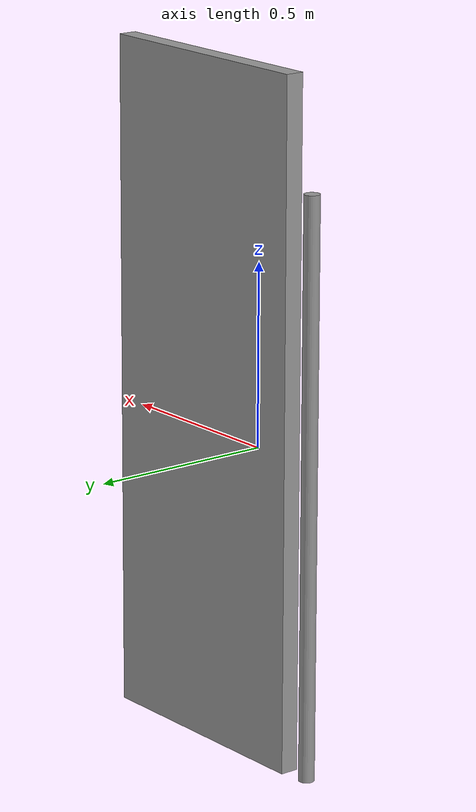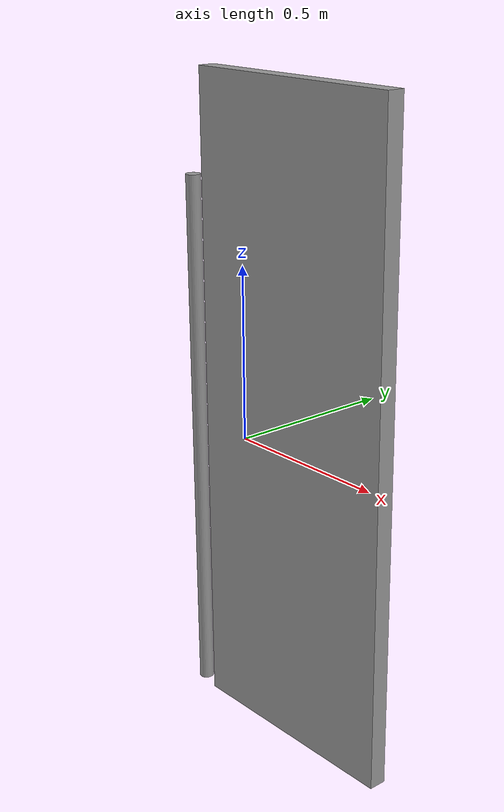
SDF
<?xml version='1.0'?>
<sdf version='1.6'>
  <model name='2'>
    <link name='link_0'>
      <inertial>
        <mass>0.0665288</mass>
        <inertia>
          <ixx>0.0196309</ixx>
          <ixy>0</ixy>
          <ixz>0</ixz>
          <iyy>0.0223178</iyy>
          <iyz>0</iyz>
          <izz>0.00271539</izz>
        </inertia>
        <pose frame=''>0 0 0 0 -0 0</pose>
      </inertial>
      <pose frame=''>0.210089 0 0.073985 0 -0 0</pose>
      <visual name='visual'>
        <pose frame=''>0 0 0 0 -0 0</pose>
        <geometry>
          <box>
            <size>0.698006 0.050695 1.88104</size>
          </box>
        </geometry>
        <material>
          <lighting>1</lighting>
          <script>
            <uri>file://media/materials/scripts/gazebo.material</uri>
            <name>Gazebo/Grey</name>
          </script>
          <emissive>0 0 0 1</emissive>
        </material>
        <transparency>0</transparency>
        <cast_shadows>1</cast_shadows>
      </visual>
      <collision name='collision'>
        <laser_retro>0</laser_retro>
        <max_contacts>10</max_contacts>
        <pose frame=''>0 0 0 0 -0 0</pose>
        <geometry>
          <box>
            <size>0.698006 0.050695 1.88104</size>
          </box>
        </geometry>
        <surface>
          <friction>
            <ode>
              <mu>1</mu>
              <mu2>1</mu2>
              <fdir1>0 0 0</fdir1>
              <slip1>0</slip1>
              <slip2>0</slip2>
            </ode>
            <torsional>
              <coefficient>1</coefficient>
              <patch_radius>0</patch_radius>
              <surface_radius>0</surface_radius>
              <use_patch_radius>1</use_patch_radius>
              <ode>
                <slip>0</slip>
              </ode>
            </torsional>
          </friction>
          <bounce>
            <restitution_coefficient>0</restitution_coefficient>
            <threshold>1e+06</threshold>
          </bounce>
          <contact>
            <collide_without_contact>0</collide_without_contact>
            <collide_without_contact_bitmask>1</collide_without_contact_bitmask>
            <collide_bitmask>1</collide_bitmask>
            <ode>
              <soft_cfm>0</soft_cfm>
              <soft_erp>0.2</soft_erp>
              <kp>1e+13</kp>
              <kd>1</kd>
              <max_vel>0.01</max_vel>
              <min_depth>0</min_depth>
            </ode>
            <bullet>
              <split_impulse>1</split_impulse>
              <split_impulse_penetration_threshold>-0.01</split_impulse_penetration_threshold>
              <soft_cfm>0</soft_cfm>
              <soft_erp>0.2</soft_erp>
              <kp>1e+13</kp>
              <kd>1</kd>
            </bullet>
          </contact>
        </surface>
      </collision>
    </link>
    <link name='link_1'>
      <inertial>
        <mass>0.00290368</mass>
        <inertia>
          <ixx>0.000608293</ixx>
          <ixy>0</ixy>
          <ixz>0</ixz>
          <iyy>0.000608293</iyy>
          <iyz>0</iyz>
          <izz>6.66234e-07</izz>
        </inertia>
        <pose frame=''>0 0 0 0 -0 0</pose>
      </inertial>
      <pose frame=''>-0.210089 0 -0.073985 0 -0 0</pose>
      <visual name='visual'>
        <pose frame=''>0 0 0 0 -0 0</pose>
        <geometry>
          <cylinder>
            <radius>0.0214217</radius>
            <length>1.58509</length>
          </cylinder>
        </geometry>
        <material>
          <lighting>1</lighting>
          <script>
            <uri>file://media/materials/scripts/gazebo.material</uri>
            <name>Gazebo/Grey</name>
          </script>
          <emissive>0 0 0 1</emissive>
        </material>
        <transparency>0</transparency>
        <cast_shadows>1</cast_shadows>
      </visual>
      <collision name='collision'>
        <laser_retro>0</laser_retro>
        <max_contacts>10</max_contacts>
        <pose frame=''>0 0 0 0 -0 0</pose>
        <geometry>
          <cylinder>
            <radius>0.021422</radius>
            <length>1.58509</length>
          </cylinder>
        </geometry>
        <surface>
          <friction>
            <ode>
              <mu>1</mu>
              <mu2>1</mu2>
              <fdir1>0 0 0</fdir1>
              <slip1>0</slip1>
              <slip2>0</slip2>
            </ode>
            <torsional>
              <coefficient>1</coefficient>
              <patch_radius>0</patch_radius>
              <surface_radius>0</surface_radius>
              <use_patch_radius>1</use_patch_radius>
              <ode>
                <slip>0</slip>
              </ode>
            </torsional>
          </friction>
          <bounce>
            <restitution_coefficient>0</restitution_coefficient>
            <threshold>1e+06</threshold>
          </bounce>
          <contact>
            <collide_without_contact>0</collide_without_contact>
            <collide_without_contact_bitmask>1</collide_without_contact_bitmask>
            <collide_bitmask>1</collide_bitmask>
            <ode>
              <soft_cfm>0</soft_cfm>
              <soft_erp>0.2</soft_erp>
              <kp>1e+13</kp>
              <kd>1</kd>
              <max_vel>0.01</max_vel>
              <min_depth>0</min_depth>
            </ode>
            <bullet>
              <split_impulse>1</split_impulse>
              <split_impulse_penetration_threshold>-0.01</split_impulse_penetration_threshold>
              <soft_cfm>0</soft_cfm>
              <soft_erp>0.2</soft_erp>
              <kp>1e+13</kp>
              <kd>1</kd>
            </bullet>
          </contact>
        </surface>
      </collision>
    </link>
    <joint name='link_1_JOINT_0' type='revolute'>
      <parent>link_1</parent>
      <child>link_0</child>
      <pose frame=''>-0.3 0 0 0 -0 0</pose>
      <axis>
        <xyz>0 0 1</xyz>
        <use_parent_model_frame>0</use_parent_model_frame>
        <limit>
          <lower>-1.79769e+308</lower>
          <upper>1.79769e+308</upper>
          <effort>-1</effort>
          <velocity>-1</velocity>
        </limit>
        <dynamics>
          <spring_reference>0</spring_reference>
          <spring_stiffness>0</spring_stiffness>
          <damping>0</damping>
        </dynamics>
      </axis>
      <physics>
        <ode>
          <limit>
            <cfm>0</cfm>
            <erp>0.2</erp>
          </limit>
          <suspension>
            <cfm>0</cfm>
            <erp>0.2</erp>
          </suspension>
        </ode>
      </physics>
    </joint>
    <static>0</static>
    <allow_auto_disable>1</allow_auto_disable>
  </model>
</sdf>
